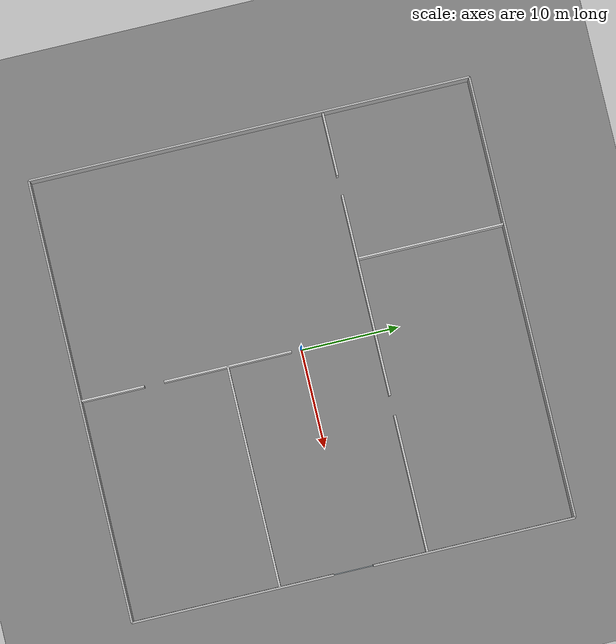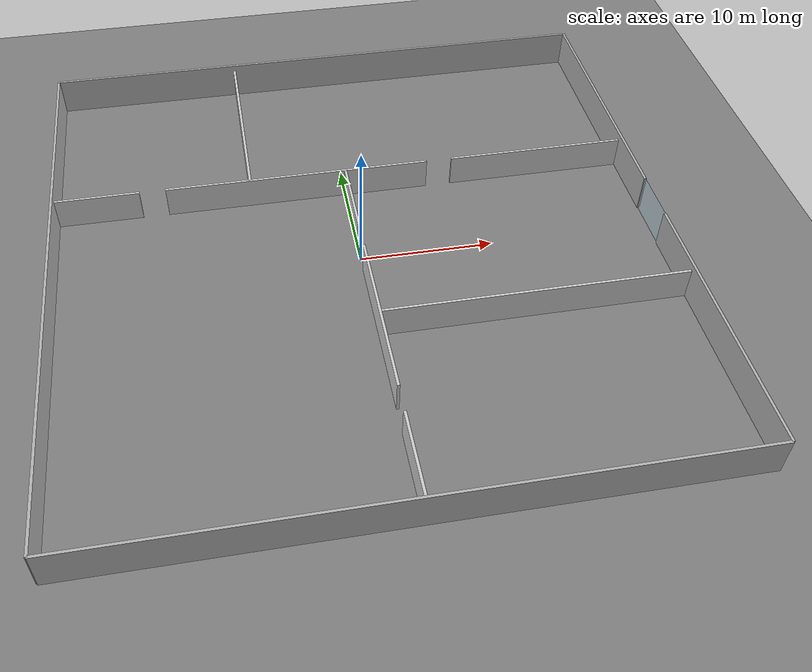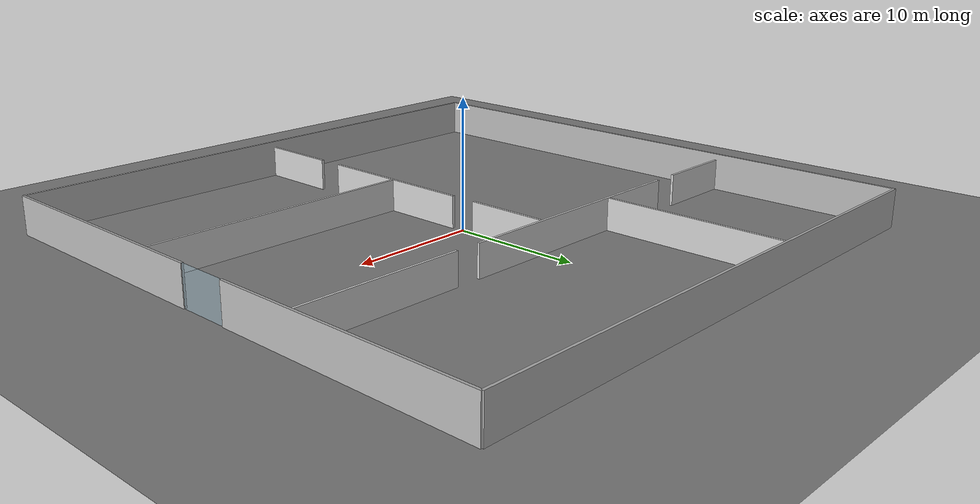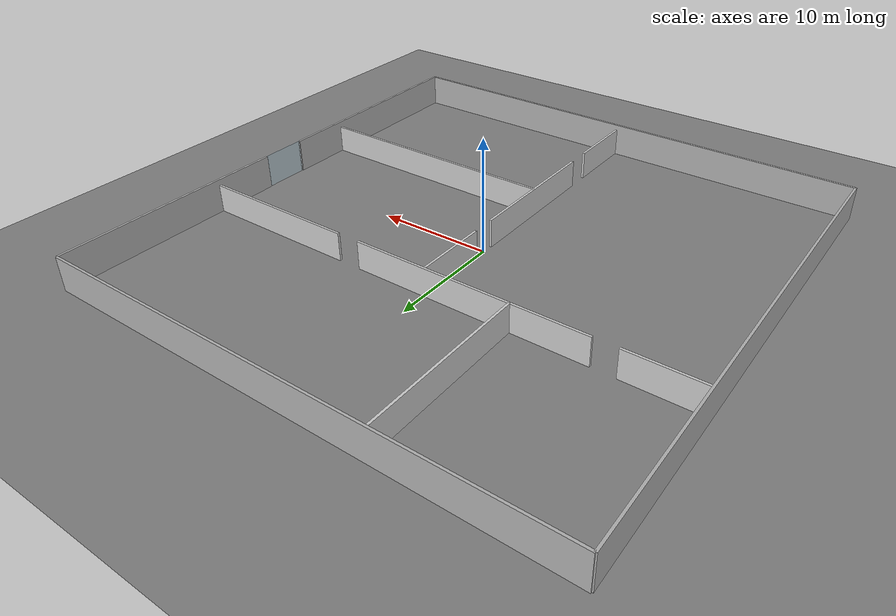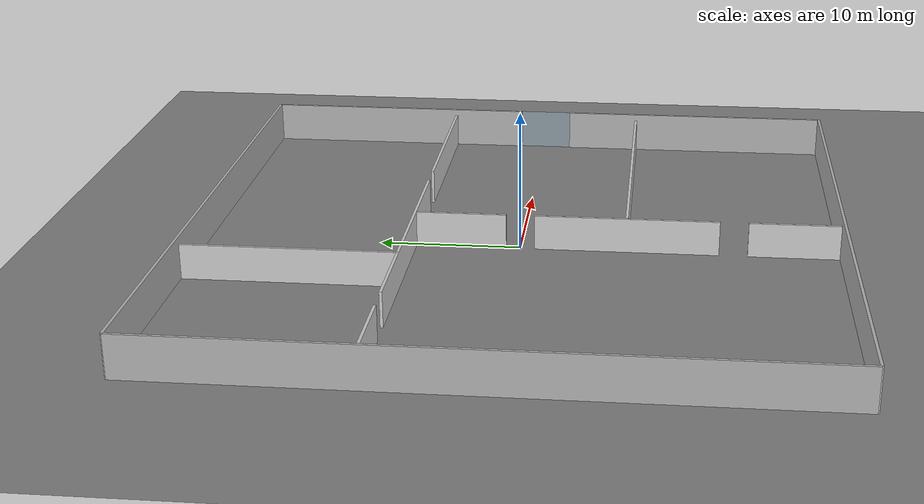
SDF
<sdf version="1.6">
 <world name="library">
  <gravity>0 0 -9.8</gravity>
  <magnetic_field>6e-06 2.3e-05 -4.2e-05</magnetic_field>
  <atmosphere type="adiabatic"/>
  <physics default="0" name="default_physics" type="ode">
   <max_step_size>0.001</max_step_size>
   <real_time_factor>1</real_time_factor>
   <real_time_update_rate>1000</real_time_update_rate>
  </physics>
  <scene>
   <ambient>0.05 0.05 0.05 1</ambient>
   <background>0.3 0.3 0.3 1</background>
   <shadows>1</shadows>
   <grid>true</grid>
   <origin_visual>false</origin_visual>
  </scene>
  <model name="ground_plane">
   <static>true</static>
   <link name="link">
    <collision name="collision">
     <geometry><plane><normal>0 0 1</normal><size>100 100</size></plane></geometry>
    </collision>
    <visual name="visual">
     <geometry><plane><normal>0 0 1</normal><size>100 100</size></plane></geometry>
     <material>
      <ambient>0.5 0.5 0.5 1</ambient>
      <diffuse>0.5 0.5 0.5 1</diffuse>
      <specular>0.05 0.05 0.05 1</specular>
     </material>
    </visual>
   </link>
  </model>
  <model name="wall_south">
   <static>true</static>
   <pose>0 -22.5 1.5 0 0 0</pose>
   <link name="link">
    <collision name="collision"><geometry><box><size>45 0.2 3</size></box></geometry></collision>
    <visual name="visual">
     <geometry><box><size>45 0.2 3</size></box></geometry>
     <material><ambient>0.5 0.5 0.5 1</ambient><diffuse>0.7 0.7 0.7 1</diffuse></material>
    </visual>
   </link>
  </model>
  <model name="wall_north">
   <static>true</static>
   <pose>0 22.5 1.5 0 0 0</pose>
   <link name="link">
    <collision name="collision"><geometry><box><size>45 0.2 3</size></box></geometry></collision>
    <visual name="visual">
     <geometry><box><size>45 0.2 3</size></box></geometry>
     <material><ambient>0.5 0.5 0.5 1</ambient><diffuse>0.7 0.7 0.7 1</diffuse></material>
    </visual>
   </link>
  </model>
  <model name="wall_west">
   <static>true</static>
   <pose>-22.5 0 1.5 0 0 0</pose>
   <link name="link">
    <collision name="collision"><geometry><box><size>0.2 45 3</size></box></geometry></collision>
    <visual name="visual">
     <geometry><box><size>0.2 45 3</size></box></geometry>
     <material><ambient>0.5 0.5 0.5 1</ambient><diffuse>0.7 0.7 0.7 1</diffuse></material>
    </visual>
   </link>
  </model>
  <model name="wall_east_top">
   <static>true</static>
   <pose>22.5 12.25 1.5 0 0 0</pose>
   <link name="link">
    <collision name="collision"><geometry><box><size>0.2 20.5 3</size></box></geometry></collision>
    <visual name="visual">
     <geometry><box><size>0.2 20.5 3</size></box></geometry>
     <material><ambient>0.5 0.5 0.5 1</ambient><diffuse>0.7 0.7 0.7 1</diffuse></material>
    </visual>
   </link>
  </model>
  <model name="gate_main_glass">
   <static>true</static>
   <pose>22.5 0 1.5 0 0 0</pose>
   <link name="link">
    <collision name="collision"><geometry><box><size>0.05 4 3</size></box></geometry></collision>
    <visual name="visual">
     <geometry><box><size>0.05 4 3</size></box></geometry>
     <material>
      <ambient>0.7 0.9 1.0 0.3</ambient>
      <diffuse>0.7 0.9 1.0 0.3</diffuse>
      <specular>1 1 1 0.3</specular>
     </material>
    </visual>
   </link>
  </model>
  <model name="wall_east_bottom">
   <static>true</static>
   <pose>22.5 -12.25 1.5 0 0 0</pose>
   <link name="link">
    <collision name="collision"><geometry><box><size>0.2 20.5 3</size></box></geometry></collision>
    <visual name="visual">
     <geometry><box><size>0.2 20.5 3</size></box></geometry>
     <material><ambient>0.5 0.5 0.5 1</ambient><diffuse>0.7 0.7 0.7 1</diffuse></material>
    </visual>
   </link>
  </model>
  <model name="wall_1">
   <static>true</static>
   <pose>-7.5 15 1.25 0 0 0</pose>
   <link name="link">
    <collision name="collision"><geometry><box><size>0.2 15 2.5</size></box></geometry></collision>
    <visual name="visual">
     <geometry><box><size>0.2 15 2.5</size></box></geometry>
     <material>
      <ambient>0.7 0.7 0.7 1</ambient>
      <diffuse>0.8 0.8 0.8 1</diffuse>
      <specular>0.2 0.2 0.2 1</specular>
     </material>
    </visual>
   </link>
  </model>
  <model name="wall_2_top">
   <static>true</static>
   <pose>0 4.25 1.25 0 0 0</pose>
   <link name="link">
    <collision name="collision"><geometry><box><size>0.2 6.5 2.5</size></box></geometry></collision>
    <visual name="visual">
     <geometry><box><size>0.2 6.5 2.5</size></box></geometry>
     <material>
      <ambient>0.7 0.7 0.7 1</ambient>
      <diffuse>0.8 0.8 0.8 1</diffuse>
      <specular>0.2 0.2 0.2 1</specular>
     </material>
    </visual>
   </link>
  </model>
  <model name="wall_2_middle">
   <static>true</static>
   <pose>0 -7.5 1.25 0 0 0</pose>
   <link name="link">
    <collision name="collision"><geometry><box><size>0.2 13 2.5</size></box></geometry></collision>
    <visual name="visual">
     <geometry><box><size>0.2 13 2.5</size></box></geometry>
     <material>
      <ambient>0.7 0.7 0.7 1</ambient>
      <diffuse>0.8 0.8 0.8 1</diffuse>
      <specular>0.2 0.2 0.2 1</specular>
     </material>
    </visual>
   </link>
  </model>
  <model name="wall_2_bottom">
   <static>true</static>
   <pose>0 -19.25 1.25 0 0 0</pose>
   <link name="link">
    <collision name="collision"><geometry><box><size>0.2 6.5 2.5</size></box></geometry></collision>
    <visual name="visual">
     <geometry><box><size>0.2 6.5 2.5</size></box></geometry>
     <material>
      <ambient>0.7 0.7 0.7 1</ambient>
      <diffuse>0.8 0.8 0.8 1</diffuse>
      <specular>0.2 0.2 0.2 1</specular>
     </material>
    </visual>
   </link>
  </model>
  <model name="wall_3_left">
   <static>true</static>
   <pose>-19.25 7.5 1.25 0 0 0</pose>
   <link name="link">
    <collision name="collision"><geometry><box><size>6.5 0.2 2.5</size></box></geometry></collision>
    <visual name="visual">
     <geometry><box><size>6.5 0.2 2.5</size></box></geometry>
     <material>
      <ambient>0.7 0.7 0.7 1</ambient>
      <diffuse>0.8 0.8 0.8 1</diffuse>
      <specular>0.2 0.2 0.2 1</specular>
     </material>
    </visual>
   </link>
  </model>
  <model name="wall_3_middle">
   <static>true</static>
   <pose>-3.75 7.5 1.25 0 0 0</pose>
   <link name="link">
    <collision name="collision"><geometry><box><size>20.5 0.2 2.5</size></box></geometry></collision>
    <visual name="visual">
     <geometry><box><size>20.5 0.2 2.5</size></box></geometry>
     <material>
      <ambient>0.7 0.7 0.7 1</ambient>
      <diffuse>0.8 0.8 0.8 1</diffuse>
      <specular>0.2 0.2 0.2 1</specular>
     </material>
    </visual>
   </link>
  </model>
  <model name="wall_3_right">
   <static>true</static>
   <pose>15.5 7.5 1.25 0 0 0</pose>
   <link name="link">
    <collision name="collision"><geometry><box><size>14 0.2 2.5</size></box></geometry></collision>
    <visual name="visual">
     <geometry><box><size>14 0.2 2.5</size></box></geometry>
     <material>
      <ambient>0.7 0.7 0.7 1</ambient>
      <diffuse>0.8 0.8 0.8 1</diffuse>
      <specular>0.2 0.2 0.2 1</specular>
     </material>
    </visual>
   </link>
  </model>
  <model name="wall_4">
   <static>true</static>
   <pose>11.25 -7.5 1.25 0 0 0</pose>
   <link name="link">
    <collision name="collision"><geometry><box><size>22.5 0.2 2.5</size></box></geometry></collision>
    <visual name="visual">
     <geometry><box><size>22.5 0.2 2.5</size></box></geometry>
     <material>
      <ambient>0.7 0.7 0.7 1</ambient>
      <diffuse>0.8 0.8 0.8 1</diffuse>
      <specular>0.2 0.2 0.2 1</specular>
     </material>
    </visual>
   </link>
  </model>
  <light name="library_light_1" type="point">
   <pose>-15 15 8 0 0 0</pose>
   <diffuse>0.3 0.3 0.3 1</diffuse>
   <specular>0.1 0.1 0.1 1</specular>
   <attenuation>
    <range>35</range>
    <constant>0.5</constant>
    <linear>0.02</linear>
    <quadratic>0.002</quadratic>
   </attenuation>
   <cast_shadows>0</cast_shadows>
  </light>
  <light name="library_light_2" type="point">
   <pose>7.5 15 8 0 0 0</pose>
   <diffuse>0.3 0.3 0.3 1</diffuse>
   <specular>0.1 0.1 0.1 1</specular>
   <attenuation>
    <range>35</range>
    <constant>0.5</constant>
    <linear>0.02</linear>
    <quadratic>0.002</quadratic>
   </attenuation>
   <cast_shadows>0</cast_shadows>
  </light>
  <light name="library_light_3" type="point">
   <pose>7.5 0 8 0 0 0</pose>
   <diffuse>0.3 0.3 0.3 1</diffuse>
   <specular>0.1 0.1 0.1 1</specular>
   <attenuation>
    <range>35</range>
    <constant>0.5</constant>
    <linear>0.02</linear>
    <quadratic>0.002</quadratic>
   </attenuation>
   <cast_shadows>0</cast_shadows>
  </light>
  <light name="library_light_4" type="point">
   <pose>0 -15 8 0 0 0</pose>
   <diffuse>0.3 0.3 0.3 1</diffuse>
   <specular>0.1 0.1 0.1 1</specular>
   <attenuation>
    <range>35</range>
    <constant>0.5</constant>
    <linear>0.02</linear>
    <quadratic>0.002</quadratic>
   </attenuation>
   <cast_shadows>0</cast_shadows>
  </light>
  <light name="lobby_light_1" type="point">
   <pose>10 -3 6 0 0 0</pose>
   <diffuse>0.35 0.35 0.35 1</diffuse>
   <specular>0.15 0.15 0.15 1</specular>
   <attenuation>
    <range>25</range>
    <constant>0.4</constant>
    <linear>0.02</linear>
    <quadratic>0.002</quadratic>
   </attenuation>
  </light>
  <light name="lobby_light_2" type="point">
   <pose>15 3 6 0 0 0</pose>
   <diffuse>0.35 0.35 0.35 1</diffuse>
   <specular>0.15 0.15 0.15 1</specular>
   <attenuation>
    <range>25</range>
    <constant>0.4</constant>
    <linear>0.02</linear>
    <quadratic>0.002</quadratic>
   </attenuation>
  </light>
  <light name="children_light_1" type="point">
   <pose>8 -12 6 0 0 0</pose>
   <diffuse>0.35 0.35 0.35 1</diffuse>
   <specular>0.15 0.15 0.15 1</specular>
   <attenuation>
    <range>25</range>
    <constant>0.4</constant>
    <linear>0.02</linear>
    <quadratic>0.002</quadratic>
   </attenuation>
  </light>
  <light name="children_light_2" type="point">
   <pose>14 -18 6 0 0 0</pose>
   <diffuse>0.35 0.35 0.35 1</diffuse>
   <specular>0.15 0.15 0.15 1</specular>
   <attenuation>
    <range>25</range>
    <constant>0.4</constant>
    <linear>0.02</linear>
    <quadratic>0.002</quadratic>
   </attenuation>
  </light>
  <light name="archives_light_1" type="point">
   <pose>-15 12 6 0 0 0</pose>
   <diffuse>0.35 0.35 0.35 1</diffuse>
   <specular>0.15 0.15 0.15 1</specular>
   <attenuation>
    <range>30</range>
    <constant>0.4</constant>
    <linear>0.02</linear>
    <quadratic>0.002</quadratic>
   </attenuation>
  </light>
  <light name="archives_light_2" type="point">
   <pose>-15 18 6 0 0 0</pose>
   <diffuse>0.35 0.35 0.35 1</diffuse>
   <specular>0.15 0.15 0.15 1</specular>
   <attenuation>
    <range>30</range>
    <constant>0.4</constant>
    <linear>0.02</linear>
    <quadratic>0.002</quadratic>
   </attenuation>
  </light>
  <light name="archives_light_3" type="point">
   <pose>-10 15 6 0 0 0</pose>
   <diffuse>0.35 0.35 0.35 1</diffuse>
   <specular>0.15 0.15 0.15 1</specular>
   <attenuation>
    <range>30</range>
    <constant>0.4</constant>
    <linear>0.02</linear>
    <quadratic>0.002</quadratic>
   </attenuation>
  </light>
  <light name="reference_light_1" type="point">
   <pose>-15 -3 6 0 0 0</pose>
   <diffuse>0.35 0.35 0.35 1</diffuse>
   <specular>0.15 0.15 0.15 1</specular>
   <attenuation>
    <range>30</range>
    <constant>0.4</constant>
    <linear>0.02</linear>
    <quadratic>0.002</quadratic>
   </attenuation>
  </light>
  <light name="reference_light_2" type="point">
   <pose>-15 3 6 0 0 0</pose>
   <diffuse>0.35 0.35 0.35 1</diffuse>
   <specular>0.15 0.15 0.15 1</specular>
   <attenuation>
    <range>30</range>
    <constant>0.4</constant>
    <linear>0.02</linear>
    <quadratic>0.002</quadratic>
   </attenuation>
  </light>
  <light name="reference_light_3" type="point">
   <pose>-10 0 6 0 0 0</pose>
   <diffuse>0.35 0.35 0.35 1</diffuse>
   <specular>0.15 0.15 0.15 1</specular>
   <attenuation>
    <range>30</range>
    <constant>0.4</constant>
    <linear>0.02</linear>
    <quadratic>0.002</quadratic>
   </attenuation>
  </light>
  <light name="reading_light_1" type="point">
   <pose>3 18 6 0 0 0</pose>
   <diffuse>0.35 0.35 0.33 1</diffuse>
   <specular>0.15 0.15 0.15 1</specular>
   <attenuation>
    <range>30</range>
    <constant>0.4</constant>
    <linear>0.02</linear>
    <quadratic>0.002</quadratic>
   </attenuation>
  </light>
  <light name="reading_light_2" type="point">
   <pose>12 18 6 0 0 0</pose>
   <diffuse>0.35 0.35 0.33 1</diffuse>
   <specular>0.15 0.15 0.15 1</specular>
   <attenuation>
    <range>30</range>
    <constant>0.4</constant>
    <linear>0.02</linear>
    <quadratic>0.002</quadratic>
   </attenuation>
  </light>
  <light name="reading_light_3" type="point">
   <pose>3 13 6 0 0 0</pose>
   <diffuse>0.35 0.35 0.33 1</diffuse>
   <specular>0.15 0.15 0.15 1</specular>
   <attenuation>
    <range>30</range>
    <constant>0.4</constant>
    <linear>0.02</linear>
    <quadratic>0.002</quadratic>
   </attenuation>
  </light>
  <light name="reading_light_4" type="point">
   <pose>12 13 6 0 0 0</pose>
   <diffuse>0.35 0.35 0.33 1</diffuse>
   <specular>0.15 0.15 0.15 1</specular>
   <attenuation>
    <range>30</range>
    <constant>0.4</constant>
    <linear>0.02</linear>
    <quadratic>0.002</quadratic>
   </attenuation>
  </light>
 </world>
</sdf>
